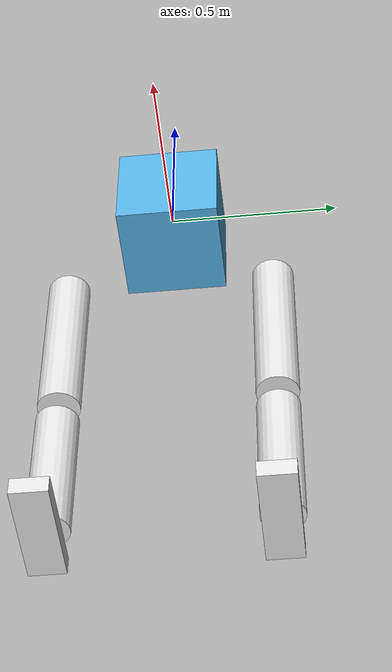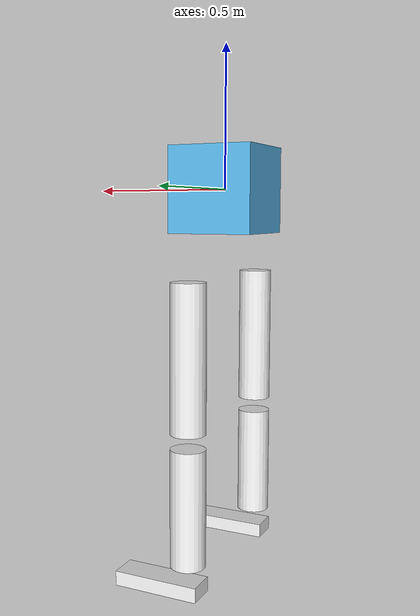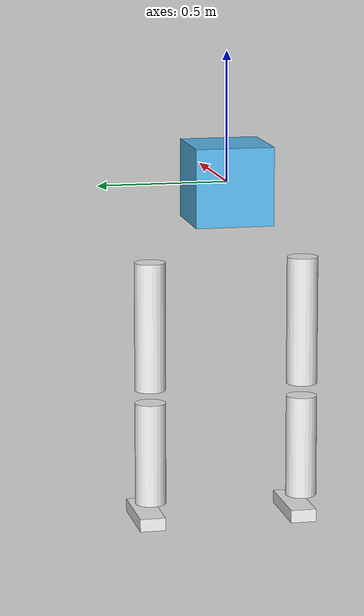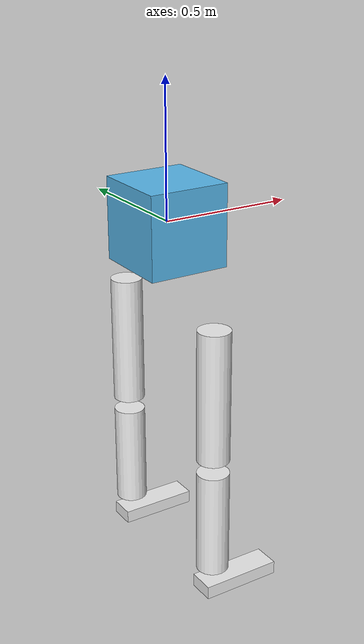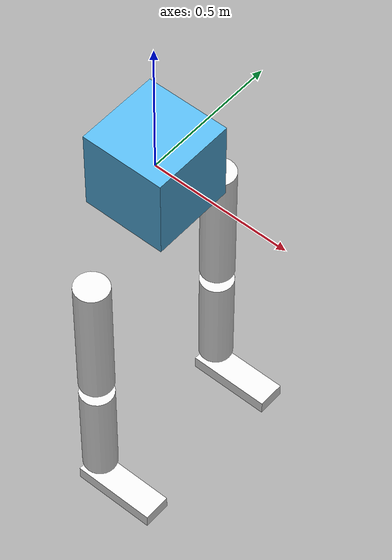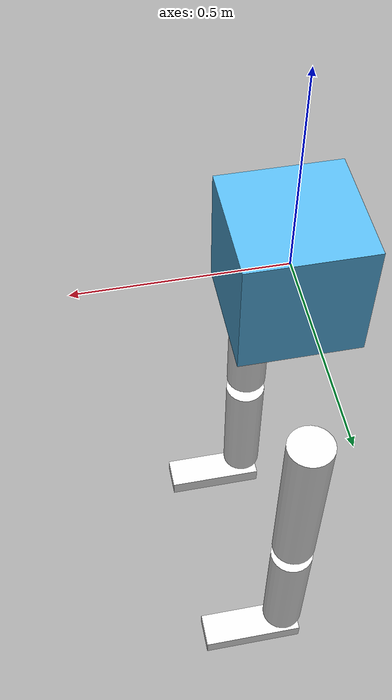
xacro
<?xml version="1.0"?>
<robot xmlns:xacro="http://www.ros.org/wiki/xacro" name="simple_walker">

    <!-- Define properties for specifying the overall mass distribution of the robot -->
    <xacro:property name="masstotal" value="1" />
    <xacro:property name="massbodytolegratio" value="0.5" />
    <xacro:property name="massbody" value="${masstotal / (1 + 2 / massbodytolegratio)}" />

    <xacro:property name="bodywidth" value="0.3" />
    <xacro:property name="bodyheight" value="0.3" />
    <xacro:property name="bodydepth" value="0.3" />

    <link name="base_link">
    </link>

    <!-- Define the upper portion of the robot -->
    <link name="body">
        <visual>
            <geometry>
                <box size="${bodywidth} ${bodyheight} ${bodydepth}">
                </box>
            </geometry>
        </visual>
        <collision>
            <geometry>
                <box size="${bodywidth} ${bodyheight} ${bodydepth}">
                </box>
            </geometry>
        </collision>
        <inertial>
            <mass value="1" />
            <inertia
                ixx="1e-1"
                ixy="0"
                ixz="0"
                iyy="1e-1"
                iyz="0"
                izz="1e-1" />
        </inertial>
    </link>

    <!-- Include components -->
    <xacro:include filename="$(find walker_description)/urdf/walker_leg.macro.xacro" />

    <!-- Attach dummy root link to body -->
    <joint name="base_link_to_body" type="fixed">
        <parent link="base_link" />
        <child link="body" />
    </joint>

    <!-- Instantiate the left leg of the robot -->
    <xacro:walker_leg_macro id="left" />
    <joint name="body_to_leg_left" type="revolute">
        <parent link="body" />
        <child link="thigh_left" />
        <axis xyz="0 1 0" />
        <origin xyz="0 ${-bodyheight} ${-(bodydepth / 2 + shank_length)}" />
        <limit effort="100" lower="-0.5" upper="0.5" velocity="10"/>
    </joint>

    <!-- Instantiate the right leg of the robot -->
    <xacro:walker_leg_macro id="right" />
    <joint name="body_to_leg_right" type="revolute">
        <parent link="body" />
        <child link="thigh_right" />
        <axis xyz="0 1 0" />
        <origin xyz="0 ${bodyheight} ${-(bodydepth / 2 + shank_length)}" />
        <limit effort="100" lower="-0.5" upper="0.5" velocity="10"/>
    </joint>

    <!-- Include hardware configuration for ros2_control -->
    <xacro:include filename="$(find walker_description)/urdf/ros2_control/simple_walker.ros2_control.xacro" />
    <xacro:walker_ros2_control name="walker" plugin="gazebo_ros2_control/GazeboSystem" />

    <!-- Specify the Gazebo plugin for interfacing with ros2_control -->
    <gazebo>
        <plugin filename="libgazebo_ros2_control.so" name="gazebo_ros2_control">
            <parameters>$(find walker_description)/config/ros2_controllers.yaml</parameters>

            <robot_param>robot_description</robot_param>
            <robot_param_node>robot_state_publisher</robot_param_node>
        </plugin>
    </gazebo>
</robot>

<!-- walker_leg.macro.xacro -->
<robot xmlns:xacro="http://www.ros.org/wiki/xacro" name="walker_leg_macro">

    <xacro:property name="thigh_length" value="0.5" />
    <xacro:property name="shank_length" value="0.4" />
    <xacro:property name="knee_joint_radius" value="0.025" />
    <xacro:property name="ankle_joint_radius" value="0.025" />
    <xacro:property name="foot_length" value="0.3" />
    <xacro:property name="foot_width" value="0.1" />
    <xacro:property name="foot_height" value="0.05" />

    <xacro:property name="thigh_mass" value="1" />
    <xacro:property name="shank_mass" value="1" />
    <xacro:property name="foot_mass" value="1.5" />

    <xacro:include filename="$(find walker_description)/urdf/colors.xacro"/>

    <xacro:macro name="walker_leg_macro" params="id">
        <link name="thigh_${id}">
            <visual>
                <geometry>
                    <cylinder length="${thigh_length}" radius="0.06"/>
                </geometry>
                <material name="white"/>
            </visual>
            <collision>
                <geometry>
                    <cylinder length="${thigh_length}" radius="0.06"/>
                </geometry>
            </collision>
            <inertial>
            <mass value="${thigh_mass}"/>
            <inertia
                ixx="1e-1"
                ixy="0"
                ixz="0"
                iyy="1e-1"
                iyz="0"
                izz="1e-1" />
        </inertial>
        </link>

        <link name="shank_${id}">
            <visual>
                <geometry>
                    <cylinder length="${shank_length}" radius="0.06"/>
                </geometry>
                <material name="white"/>
                <origin rpy="0 0 0" xyz="0 0 ${-shank_length/2-knee_joint_radius}"/>
            </visual>
            <collision>
                <geometry>
                    <cylinder length="${shank_length}" radius="0.06"/>
                </geometry>
                <origin rpy="0 0 0" xyz="0 0 ${-shank_length/2-knee_joint_radius}"/>
            </collision>
            <inertial>
                <mass value="${shank_mass}"/>
                <inertia
                    ixx="1e-1"
                    ixy="0"
                    ixz="0"
                    iyy="1e-1"
                    iyz="0"
                    izz="1e-1" />
                <origin rpy="0 0 0" xyz="0 0 ${-shank_length/2-knee_joint_radius}"/>
            </inertial>
        </link>

        <joint name="knee_joint_${id}" type="revolute">
            <origin rpy="0 0 0" xyz="0 0 ${-thigh_length/2-knee_joint_radius}"/>
            <parent link="thigh_${id}"/>
            <child link="shank_${id}"/>
            <axis xyz="0 1 0"/>
            <limit effort="100" lower="0.0" upper="2.5" velocity="10"/>
        </joint>

        <link name="foot_${id}">
            <contact>
                <lateral_friction value="100"/>
            </contact>

            <visual>
                <geometry>
                    <box size="${foot_length} ${foot_width} ${foot_height}"/>
                </geometry>
                <material name="white"/>
                <origin xyz="${(foot_length/2-0.05)} 0 ${-ankle_joint_radius-foot_height/2}"/>
            </visual>
            <collision>
                <geometry>
                    <box size="${foot_length} ${foot_width} ${foot_height}"/>
                </geometry>
                <origin xyz="${(foot_length/2-0.05)} 0 ${-ankle_joint_radius-foot_height/2}"/>
            </collision>
            <inertial>
                <mass value="${foot_mass}"/>
                <inertia
                    ixx="1e-1"
                    ixy="0"
                    ixz="0"
                    iyy="1e-1"
                    iyz="0"
                    izz="1e-1" />
                <origin xyz="${(foot_length/2-0.05)} 0 ${-ankle_joint_radius-foot_height/2}"/>
            </inertial>
        </link>

        <joint name="ankle_joint_${id}" type="revolute">
            <origin rpy="0 0 0" xyz="0 0 ${-(knee_joint_radius + shank_length + ankle_joint_radius)}"/>
            <parent link="shank_${id}"/>
            <child link="foot_${id}"/>
            <axis xyz="0 1 0"/>
            <limit effort="100" lower="-0.1" upper="0.5" velocity="10"/>
        </joint>

    </xacro:macro>
</robot>
